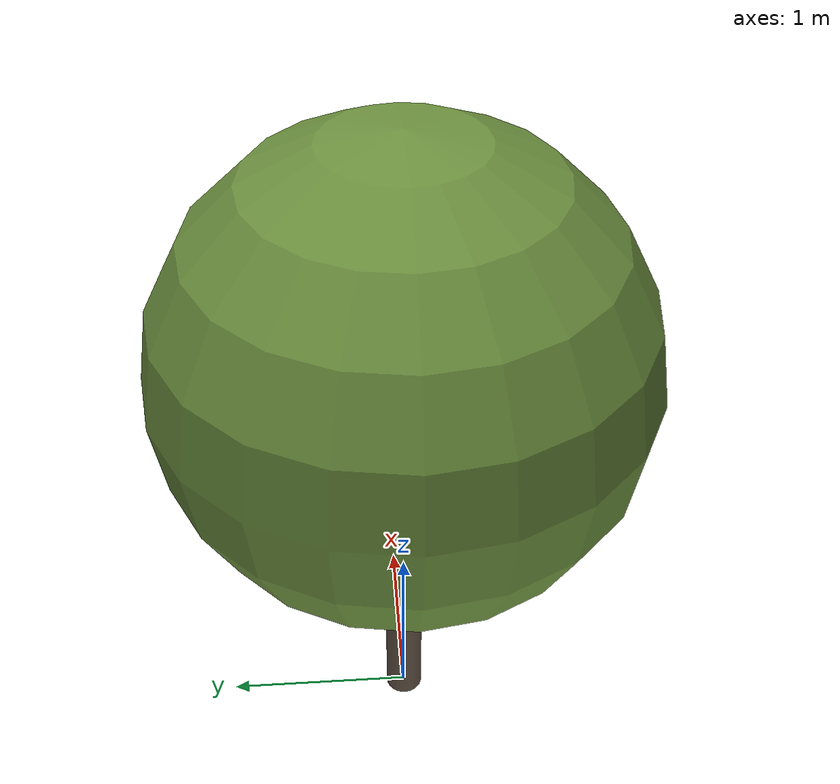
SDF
<?xml version="1.0" ?>
<sdf version="1.10">
  <model name="olivier_provence_16">
    <static>true</static>

    <!-- Tronc -->
    <link name="trunk">
      <pose>0 0 0.9918144056782693 0 0 0</pose>
      <visual name="trunk_visual">
        <geometry>
          <cylinder>
            <radius>0.10117197676573528</radius>
            <length>1.9836288113565386</length>
          </cylinder>
        </geometry>
        <material>
          <ambient>0.42 0.36 0.30 1</ambient>
          <diffuse>0.42 0.36 0.30 1</diffuse>
          <specular>0.1 0.1 0.1 1</specular>
        </material>
      </visual>
      <collision name="trunk_collision">
        <geometry>
          <cylinder>
            <radius>0.10117197676573528</radius>
            <length>1.9836288113565386</length>
          </cylinder>
        </geometry>
      </collision>
    </link>

    <!-- Feuillage -->
    <link name="crown">
      <pose>0 0 2.359017773045279 0 0 0</pose>
      <visual name="crown_visual">
        <geometry>
          <sphere>
              <radius>1.2512965389624686</radius>
            </sphere>
        </geometry>
        <material>
          <ambient>0.42 0.56 0.24 1</ambient>
          <diffuse>0.42 0.56 0.24 1</diffuse>
          <specular>0.1 0.1 0.1 1</specular>
        </material>
      </visual>
      <collision name="crown_collision">
        <geometry>
          <sphere>
            <radius>1.001037231169975</radius>
          </sphere>
        </geometry>
      </collision>
    </link>

    <!-- Joint tronc-feuillage -->
    <joint name="trunk_crown_joint" type="fixed">
      <parent>trunk</parent>
      <child>crown</child>
    </joint>

  </model>
</sdf>
